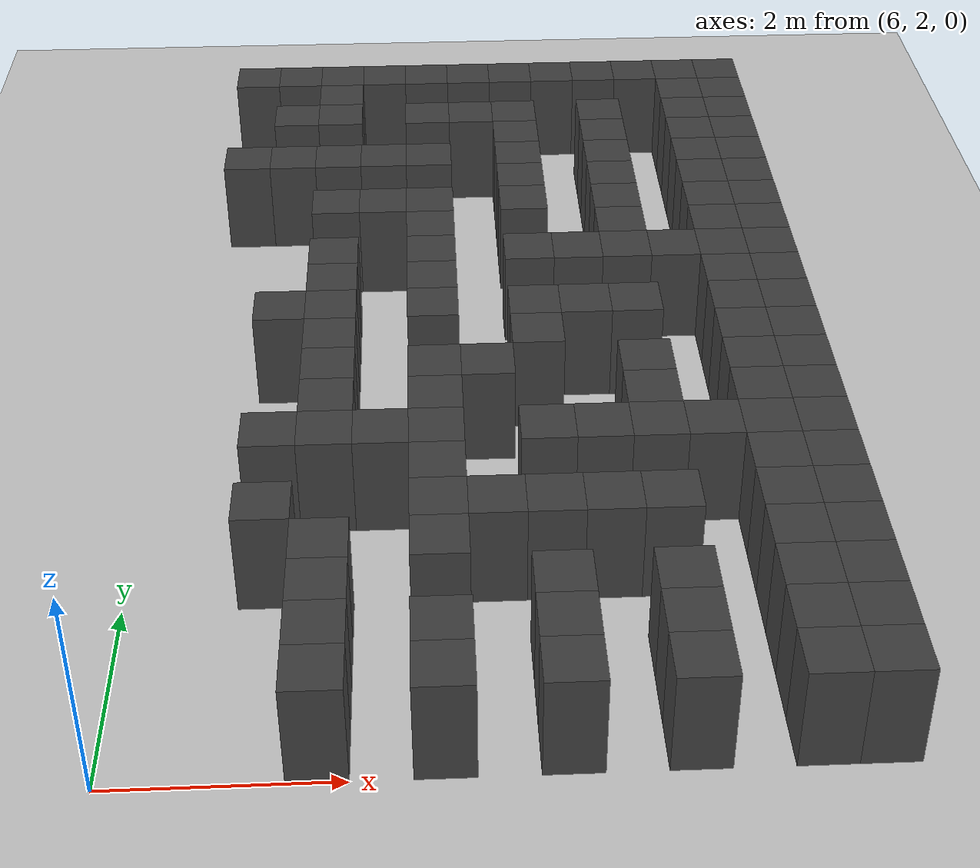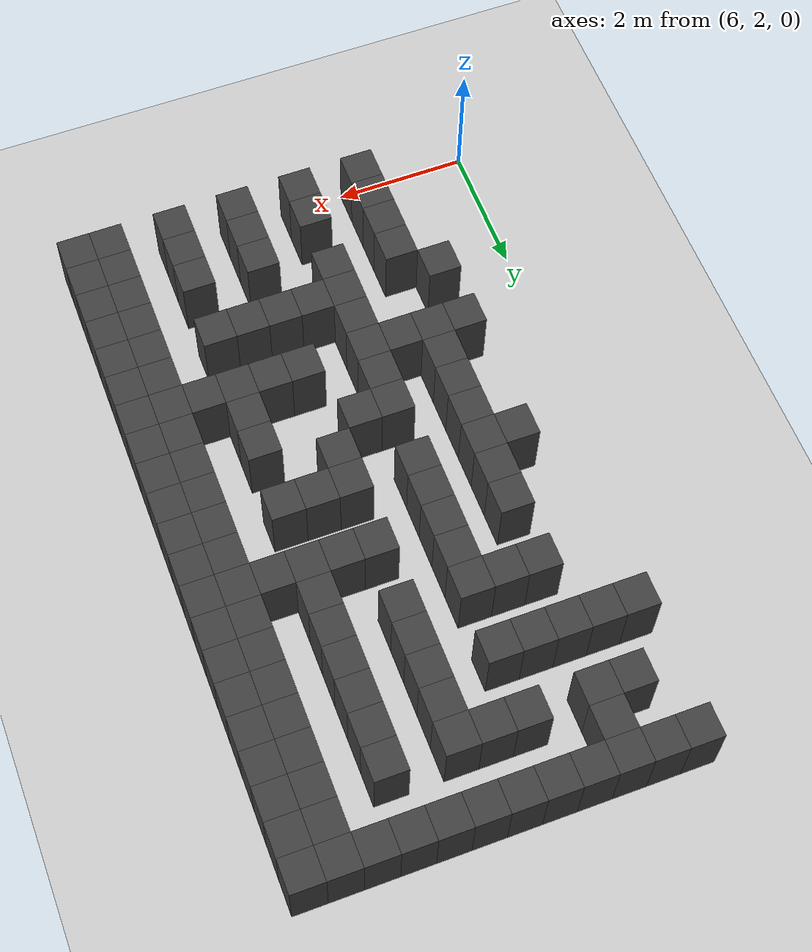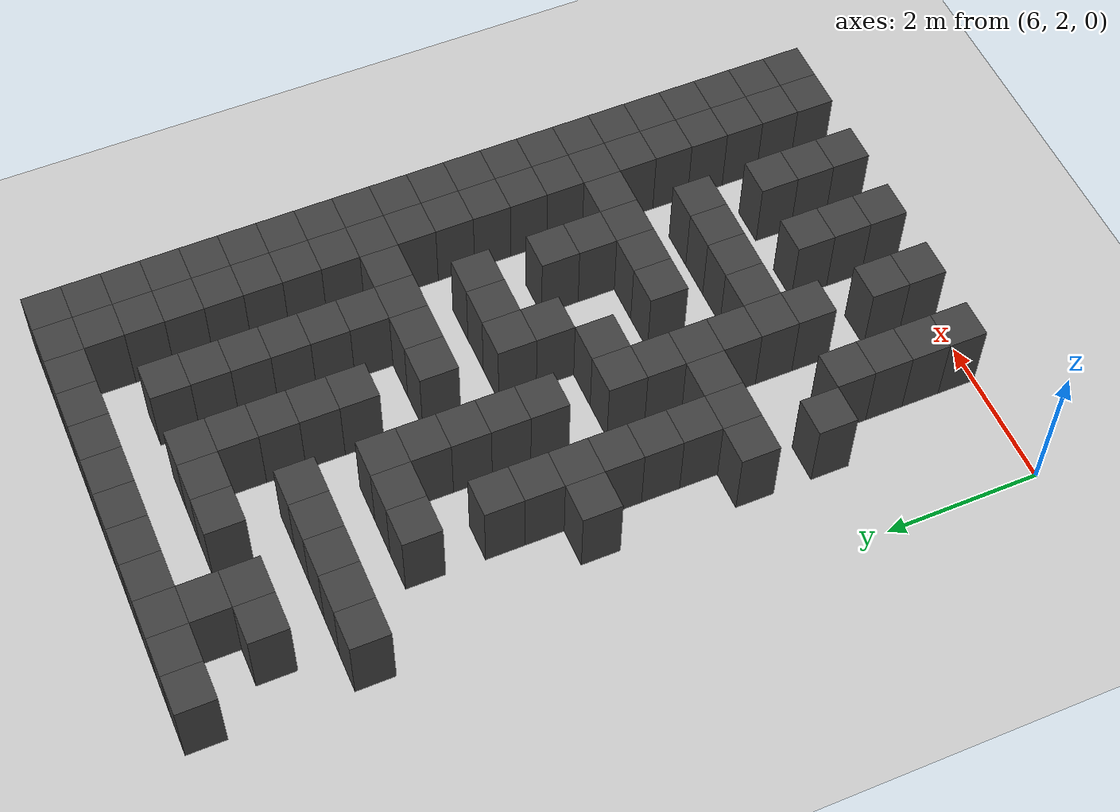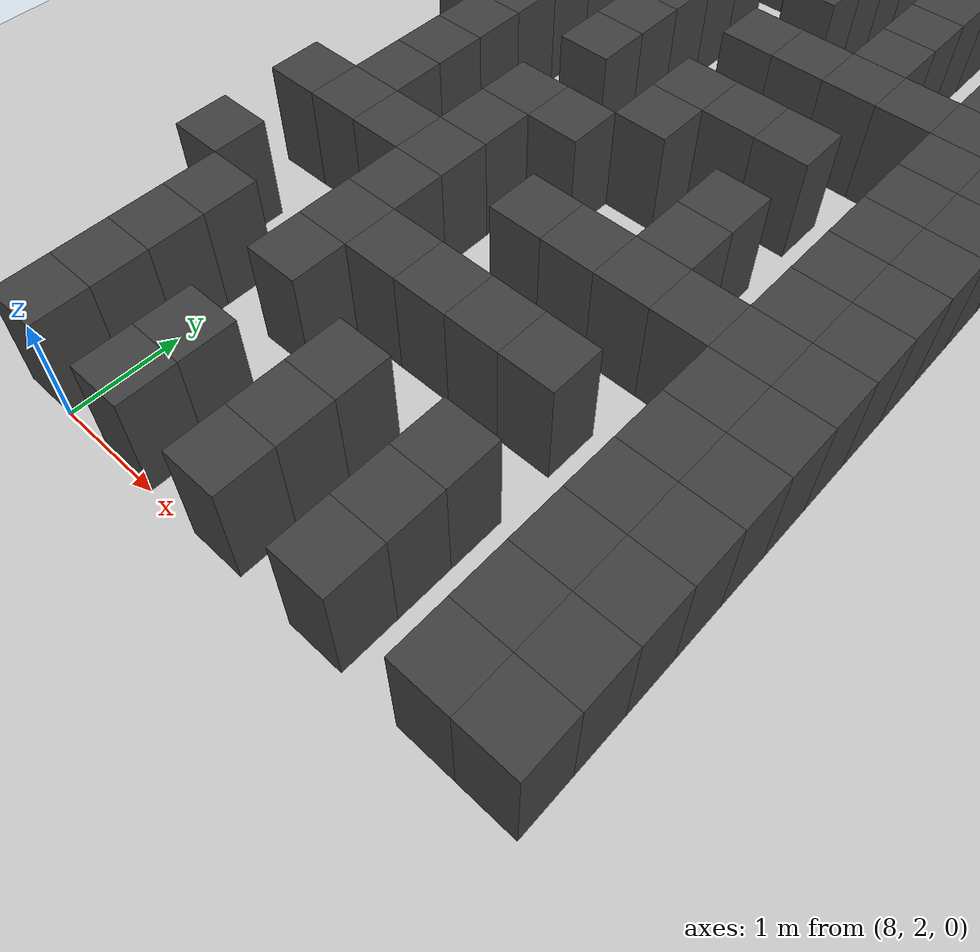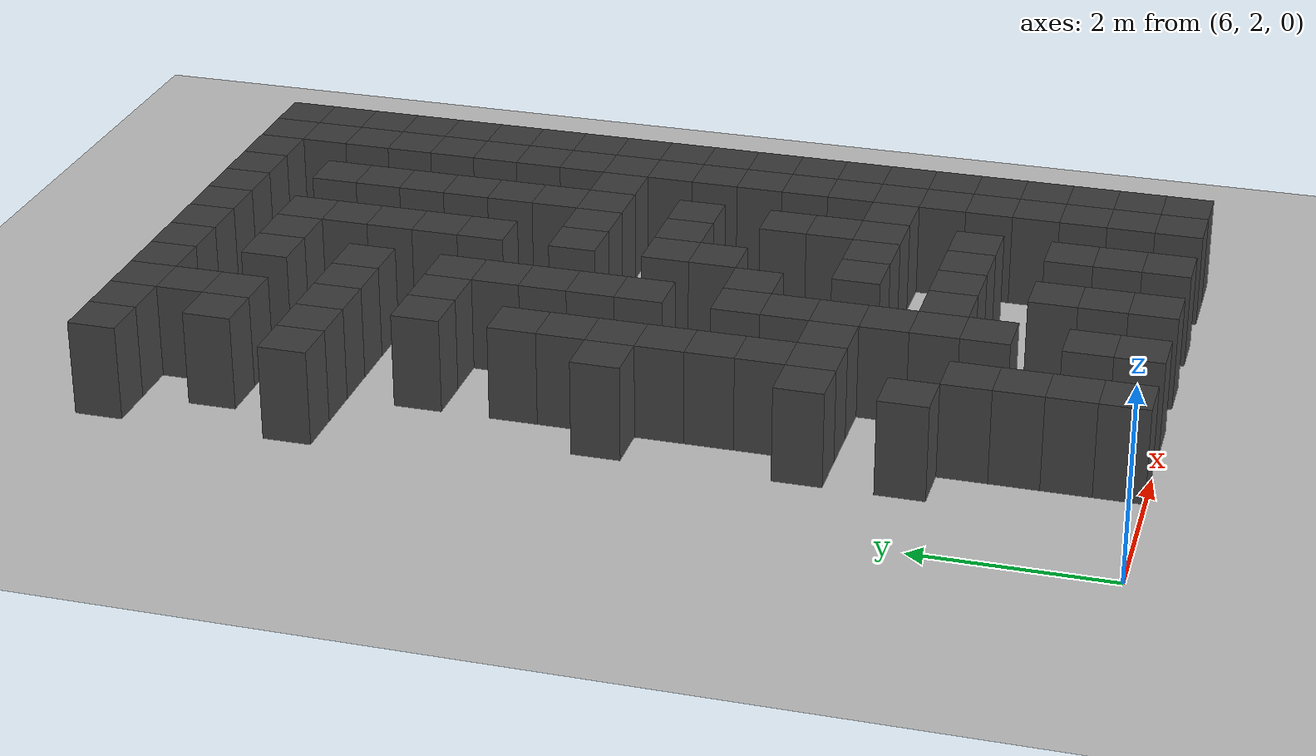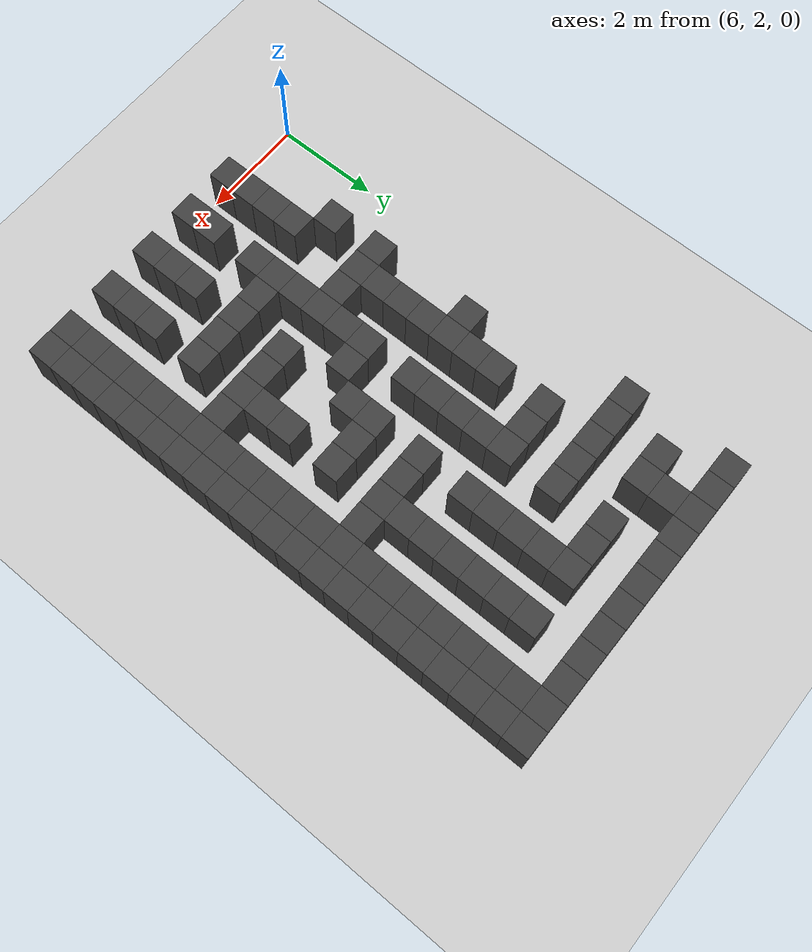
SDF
<sdf version="1.7">
 <world name="map_17663">
  <model name="ground_plane">
   <static>true</static>
   <link name="link">
    <collision name="collision">
     <geometry><plane><normal>0 0 1</normal><size>200 200</size></plane></geometry>
    </collision>
    <visual name="visual">
     <geometry><plane><normal>0 0 1</normal><size>200 200</size></plane></geometry>
     <material><ambient>0.8 0.8 0.8 1</ambient><diffuse>0.8 0.8 0.8 1</diffuse></material>
    </visual>
   </link>
  </model>
  <model name="maze_environment">
   <static>true</static>
   <link name="wall_38">
    <pose>6.750 12.250 0.500 0 0 0</pose>
    <collision name="col"><geometry><box><size>0.5 0.5 1.0</size></box></geometry></collision>
    <visual name="vis">
     <geometry><box><size>0.5 0.5 1.0</size></box></geometry>
     <material><ambient>0.15 0.15 0.15 1</ambient><diffuse>0.25 0.25 0.25 1</diffuse></material>
    </visual>
   </link>
   <link name="wall_39">
    <pose>7.250 12.250 0.500 0 0 0</pose>
    <collision name="col"><geometry><box><size>0.5 0.5 1.0</size></box></geometry></collision>
    <visual name="vis">
     <geometry><box><size>0.5 0.5 1.0</size></box></geometry>
     <material><ambient>0.15 0.15 0.15 1</ambient><diffuse>0.25 0.25 0.25 1</diffuse></material>
    </visual>
   </link>
   <link name="wall_40">
    <pose>7.750 12.250 0.500 0 0 0</pose>
    <collision name="col"><geometry><box><size>0.5 0.5 1.0</size></box></geometry></collision>
    <visual name="vis">
     <geometry><box><size>0.5 0.5 1.0</size></box></geometry>
     <material><ambient>0.15 0.15 0.15 1</ambient><diffuse>0.25 0.25 0.25 1</diffuse></material>
    </visual>
   </link>
   <link name="wall_41">
    <pose>8.250 12.250 0.500 0 0 0</pose>
    <collision name="col"><geometry><box><size>0.5 0.5 1.0</size></box></geometry></collision>
    <visual name="vis">
     <geometry><box><size>0.5 0.5 1.0</size></box></geometry>
     <material><ambient>0.15 0.15 0.15 1</ambient><diffuse>0.25 0.25 0.25 1</diffuse></material>
    </visual>
   </link>
   <link name="wall_42">
    <pose>8.750 12.250 0.500 0 0 0</pose>
    <collision name="col"><geometry><box><size>0.5 0.5 1.0</size></box></geometry></collision>
    <visual name="vis">
     <geometry><box><size>0.5 0.5 1.0</size></box></geometry>
     <material><ambient>0.15 0.15 0.15 1</ambient><diffuse>0.25 0.25 0.25 1</diffuse></material>
    </visual>
   </link>
   <link name="wall_43">
    <pose>9.250 12.250 0.500 0 0 0</pose>
    <collision name="col"><geometry><box><size>0.5 0.5 1.0</size></box></geometry></collision>
    <visual name="vis">
     <geometry><box><size>0.5 0.5 1.0</size></box></geometry>
     <material><ambient>0.15 0.15 0.15 1</ambient><diffuse>0.25 0.25 0.25 1</diffuse></material>
    </visual>
   </link>
   <link name="wall_44">
    <pose>9.750 12.250 0.500 0 0 0</pose>
    <collision name="col"><geometry><box><size>0.5 0.5 1.0</size></box></geometry></collision>
    <visual name="vis">
     <geometry><box><size>0.5 0.5 1.0</size></box></geometry>
     <material><ambient>0.15 0.15 0.15 1</ambient><diffuse>0.25 0.25 0.25 1</diffuse></material>
    </visual>
   </link>
   <link name="wall_45">
    <pose>10.250 12.250 0.500 0 0 0</pose>
    <collision name="col"><geometry><box><size>0.5 0.5 1.0</size></box></geometry></collision>
    <visual name="vis">
     <geometry><box><size>0.5 0.5 1.0</size></box></geometry>
     <material><ambient>0.15 0.15 0.15 1</ambient><diffuse>0.25 0.25 0.25 1</diffuse></material>
    </visual>
   </link>
   <link name="wall_46">
    <pose>10.750 12.250 0.500 0 0 0</pose>
    <collision name="col"><geometry><box><size>0.5 0.5 1.0</size></box></geometry></collision>
    <visual name="vis">
     <geometry><box><size>0.5 0.5 1.0</size></box></geometry>
     <material><ambient>0.15 0.15 0.15 1</ambient><diffuse>0.25 0.25 0.25 1</diffuse></material>
    </visual>
   </link>
   <link name="wall_47">
    <pose>11.250 12.250 0.500 0 0 0</pose>
    <collision name="col"><geometry><box><size>0.5 0.5 1.0</size></box></geometry></collision>
    <visual name="vis">
     <geometry><box><size>0.5 0.5 1.0</size></box></geometry>
     <material><ambient>0.15 0.15 0.15 1</ambient><diffuse>0.25 0.25 0.25 1</diffuse></material>
    </visual>
   </link>
   <link name="wall_48">
    <pose>11.750 12.250 0.500 0 0 0</pose>
    <collision name="col"><geometry><box><size>0.5 0.5 1.0</size></box></geometry></collision>
    <visual name="vis">
     <geometry><box><size>0.5 0.5 1.0</size></box></geometry>
     <material><ambient>0.15 0.15 0.15 1</ambient><diffuse>0.25 0.25 0.25 1</diffuse></material>
    </visual>
   </link>
   <link name="wall_49">
    <pose>12.250 12.250 0.500 0 0 0</pose>
    <collision name="col"><geometry><box><size>0.5 0.5 1.0</size></box></geometry></collision>
    <visual name="vis">
     <geometry><box><size>0.5 0.5 1.0</size></box></geometry>
     <material><ambient>0.15 0.15 0.15 1</ambient><diffuse>0.25 0.25 0.25 1</diffuse></material>
    </visual>
   </link>
   <link name="wall_56">
    <pose>7.750 11.750 0.500 0 0 0</pose>
    <collision name="col"><geometry><box><size>0.5 0.5 1.0</size></box></geometry></collision>
    <visual name="vis">
     <geometry><box><size>0.5 0.5 1.0</size></box></geometry>
     <material><ambient>0.15 0.15 0.15 1</ambient><diffuse>0.25 0.25 0.25 1</diffuse></material>
    </visual>
   </link>
   <link name="wall_57">
    <pose>11.750 11.750 0.500 0 0 0</pose>
    <collision name="col"><geometry><box><size>0.5 0.5 1.0</size></box></geometry></collision>
    <visual name="vis">
     <geometry><box><size>0.5 0.5 1.0</size></box></geometry>
     <material><ambient>0.15 0.15 0.15 1</ambient><diffuse>0.25 0.25 0.25 1</diffuse></material>
    </visual>
   </link>
   <link name="wall_58">
    <pose>12.250 11.750 0.500 0 0 0</pose>
    <collision name="col"><geometry><box><size>0.5 0.5 1.0</size></box></geometry></collision>
    <visual name="vis">
     <geometry><box><size>0.5 0.5 1.0</size></box></geometry>
     <material><ambient>0.15 0.15 0.15 1</ambient><diffuse>0.25 0.25 0.25 1</diffuse></material>
    </visual>
   </link>
   <link name="wall_83">
    <pose>7.250 11.250 0.500 0 0 0</pose>
    <collision name="col"><geometry><box><size>0.5 0.5 1.0</size></box></geometry></collision>
    <visual name="vis">
     <geometry><box><size>0.5 0.5 1.0</size></box></geometry>
     <material><ambient>0.15 0.15 0.15 1</ambient><diffuse>0.25 0.25 0.25 1</diffuse></material>
    </visual>
   </link>
   <link name="wall_84">
    <pose>7.750 11.250 0.500 0 0 0</pose>
    <collision name="col"><geometry><box><size>0.5 0.5 1.0</size></box></geometry></collision>
    <visual name="vis">
     <geometry><box><size>0.5 0.5 1.0</size></box></geometry>
     <material><ambient>0.15 0.15 0.15 1</ambient><diffuse>0.25 0.25 0.25 1</diffuse></material>
    </visual>
   </link>
   <link name="wall_85">
    <pose>8.750 11.250 0.500 0 0 0</pose>
    <collision name="col"><geometry><box><size>0.5 0.5 1.0</size></box></geometry></collision>
    <visual name="vis">
     <geometry><box><size>0.5 0.5 1.0</size></box></geometry>
     <material><ambient>0.15 0.15 0.15 1</ambient><diffuse>0.25 0.25 0.25 1</diffuse></material>
    </visual>
   </link>
   <link name="wall_86">
    <pose>9.250 11.250 0.500 0 0 0</pose>
    <collision name="col"><geometry><box><size>0.5 0.5 1.0</size></box></geometry></collision>
    <visual name="vis">
     <geometry><box><size>0.5 0.5 1.0</size></box></geometry>
     <material><ambient>0.15 0.15 0.15 1</ambient><diffuse>0.25 0.25 0.25 1</diffuse></material>
    </visual>
   </link>
   <link name="wall_87">
    <pose>9.750 11.250 0.500 0 0 0</pose>
    <collision name="col"><geometry><box><size>0.5 0.5 1.0</size></box></geometry></collision>
    <visual name="vis">
     <geometry><box><size>0.5 0.5 1.0</size></box></geometry>
     <material><ambient>0.15 0.15 0.15 1</ambient><diffuse>0.25 0.25 0.25 1</diffuse></material>
    </visual>
   </link>
   <link name="wall_88">
    <pose>10.750 11.250 0.500 0 0 0</pose>
    <collision name="col"><geometry><box><size>0.5 0.5 1.0</size></box></geometry></collision>
    <visual name="vis">
     <geometry><box><size>0.5 0.5 1.0</size></box></geometry>
     <material><ambient>0.15 0.15 0.15 1</ambient><diffuse>0.25 0.25 0.25 1</diffuse></material>
    </visual>
   </link>
   <link name="wall_89">
    <pose>11.750 11.250 0.500 0 0 0</pose>
    <collision name="col"><geometry><box><size>0.5 0.5 1.0</size></box></geometry></collision>
    <visual name="vis">
     <geometry><box><size>0.5 0.5 1.0</size></box></geometry>
     <material><ambient>0.15 0.15 0.15 1</ambient><diffuse>0.25 0.25 0.25 1</diffuse></material>
    </visual>
   </link>
   <link name="wall_90">
    <pose>12.250 11.250 0.500 0 0 0</pose>
    <collision name="col"><geometry><box><size>0.5 0.5 1.0</size></box></geometry></collision>
    <visual name="vis">
     <geometry><box><size>0.5 0.5 1.0</size></box></geometry>
     <material><ambient>0.15 0.15 0.15 1</ambient><diffuse>0.25 0.25 0.25 1</diffuse></material>
    </visual>
   </link>
   <link name="wall_101">
    <pose>9.750 10.750 0.500 0 0 0</pose>
    <collision name="col"><geometry><box><size>0.5 0.5 1.0</size></box></geometry></collision>
    <visual name="vis">
     <geometry><box><size>0.5 0.5 1.0</size></box></geometry>
     <material><ambient>0.15 0.15 0.15 1</ambient><diffuse>0.25 0.25 0.25 1</diffuse></material>
    </visual>
   </link>
   <link name="wall_102">
    <pose>10.750 10.750 0.500 0 0 0</pose>
    <collision name="col"><geometry><box><size>0.5 0.5 1.0</size></box></geometry></collision>
    <visual name="vis">
     <geometry><box><size>0.5 0.5 1.0</size></box></geometry>
     <material><ambient>0.15 0.15 0.15 1</ambient><diffuse>0.25 0.25 0.25 1</diffuse></material>
    </visual>
   </link>
   <link name="wall_103">
    <pose>11.750 10.750 0.500 0 0 0</pose>
    <collision name="col"><geometry><box><size>0.5 0.5 1.0</size></box></geometry></collision>
    <visual name="vis">
     <geometry><box><size>0.5 0.5 1.0</size></box></geometry>
     <material><ambient>0.15 0.15 0.15 1</ambient><diffuse>0.25 0.25 0.25 1</diffuse></material>
    </visual>
   </link>
   <link name="wall_104">
    <pose>12.250 10.750 0.500 0 0 0</pose>
    <collision name="col"><geometry><box><size>0.5 0.5 1.0</size></box></geometry></collision>
    <visual name="vis">
     <geometry><box><size>0.5 0.5 1.0</size></box></geometry>
     <material><ambient>0.15 0.15 0.15 1</ambient><diffuse>0.25 0.25 0.25 1</diffuse></material>
    </visual>
   </link>
   <link name="wall_130">
    <pose>6.750 10.250 0.500 0 0 0</pose>
    <collision name="col"><geometry><box><size>0.5 0.5 1.0</size></box></geometry></collision>
    <visual name="vis">
     <geometry><box><size>0.5 0.5 1.0</size></box></geometry>
     <material><ambient>0.15 0.15 0.15 1</ambient><diffuse>0.25 0.25 0.25 1</diffuse></material>
    </visual>
   </link>
   <link name="wall_131">
    <pose>7.250 10.250 0.500 0 0 0</pose>
    <collision name="col"><geometry><box><size>0.5 0.5 1.0</size></box></geometry></collision>
    <visual name="vis">
     <geometry><box><size>0.5 0.5 1.0</size></box></geometry>
     <material><ambient>0.15 0.15 0.15 1</ambient><diffuse>0.25 0.25 0.25 1</diffuse></material>
    </visual>
   </link>
   <link name="wall_132">
    <pose>7.750 10.250 0.500 0 0 0</pose>
    <collision name="col"><geometry><box><size>0.5 0.5 1.0</size></box></geometry></collision>
    <visual name="vis">
     <geometry><box><size>0.5 0.5 1.0</size></box></geometry>
     <material><ambient>0.15 0.15 0.15 1</ambient><diffuse>0.25 0.25 0.25 1</diffuse></material>
    </visual>
   </link>
   <link name="wall_133">
    <pose>8.250 10.250 0.500 0 0 0</pose>
    <collision name="col"><geometry><box><size>0.5 0.5 1.0</size></box></geometry></collision>
    <visual name="vis">
     <geometry><box><size>0.5 0.5 1.0</size></box></geometry>
     <material><ambient>0.15 0.15 0.15 1</ambient><diffuse>0.25 0.25 0.25 1</diffuse></material>
    </visual>
   </link>
   <link name="wall_134">
    <pose>8.750 10.250 0.500 0 0 0</pose>
    <collision name="col"><geometry><box><size>0.5 0.5 1.0</size></box></geometry></collision>
    <visual name="vis">
     <geometry><box><size>0.5 0.5 1.0</size></box></geometry>
     <material><ambient>0.15 0.15 0.15 1</ambient><diffuse>0.25 0.25 0.25 1</diffuse></material>
    </visual>
   </link>
   <link name="wall_135">
    <pose>9.750 10.250 0.500 0 0 0</pose>
    <collision name="col"><geometry><box><size>0.5 0.5 1.0</size></box></geometry></collision>
    <visual name="vis">
     <geometry><box><size>0.5 0.5 1.0</size></box></geometry>
     <material><ambient>0.15 0.15 0.15 1</ambient><diffuse>0.25 0.25 0.25 1</diffuse></material>
    </visual>
   </link>
   <link name="wall_136">
    <pose>10.750 10.250 0.500 0 0 0</pose>
    <collision name="col"><geometry><box><size>0.5 0.5 1.0</size></box></geometry></collision>
    <visual name="vis">
     <geometry><box><size>0.5 0.5 1.0</size></box></geometry>
     <material><ambient>0.15 0.15 0.15 1</ambient><diffuse>0.25 0.25 0.25 1</diffuse></material>
    </visual>
   </link>
   <link name="wall_137">
    <pose>11.750 10.250 0.500 0 0 0</pose>
    <collision name="col"><geometry><box><size>0.5 0.5 1.0</size></box></geometry></collision>
    <visual name="vis">
     <geometry><box><size>0.5 0.5 1.0</size></box></geometry>
     <material><ambient>0.15 0.15 0.15 1</ambient><diffuse>0.25 0.25 0.25 1</diffuse></material>
    </visual>
   </link>
   <link name="wall_138">
    <pose>12.250 10.250 0.500 0 0 0</pose>
    <collision name="col"><geometry><box><size>0.5 0.5 1.0</size></box></geometry></collision>
    <visual name="vis">
     <geometry><box><size>0.5 0.5 1.0</size></box></geometry>
     <material><ambient>0.15 0.15 0.15 1</ambient><diffuse>0.25 0.25 0.25 1</diffuse></material>
    </visual>
   </link>
   <link name="wall_151">
    <pose>9.750 9.750 0.500 0 0 0</pose>
    <collision name="col"><geometry><box><size>0.5 0.5 1.0</size></box></geometry></collision>
    <visual name="vis">
     <geometry><box><size>0.5 0.5 1.0</size></box></geometry>
     <material><ambient>0.15 0.15 0.15 1</ambient><diffuse>0.25 0.25 0.25 1</diffuse></material>
    </visual>
   </link>
   <link name="wall_152">
    <pose>10.750 9.750 0.500 0 0 0</pose>
    <collision name="col"><geometry><box><size>0.5 0.5 1.0</size></box></geometry></collision>
    <visual name="vis">
     <geometry><box><size>0.5 0.5 1.0</size></box></geometry>
     <material><ambient>0.15 0.15 0.15 1</ambient><diffuse>0.25 0.25 0.25 1</diffuse></material>
    </visual>
   </link>
   <link name="wall_153">
    <pose>11.750 9.750 0.500 0 0 0</pose>
    <collision name="col"><geometry><box><size>0.5 0.5 1.0</size></box></geometry></collision>
    <visual name="vis">
     <geometry><box><size>0.5 0.5 1.0</size></box></geometry>
     <material><ambient>0.15 0.15 0.15 1</ambient><diffuse>0.25 0.25 0.25 1</diffuse></material>
    </visual>
   </link>
   <link name="wall_154">
    <pose>12.250 9.750 0.500 0 0 0</pose>
    <collision name="col"><geometry><box><size>0.5 0.5 1.0</size></box></geometry></collision>
    <visual name="vis">
     <geometry><box><size>0.5 0.5 1.0</size></box></geometry>
     <material><ambient>0.15 0.15 0.15 1</ambient><diffuse>0.25 0.25 0.25 1</diffuse></material>
    </visual>
   </link>
   <link name="wall_181">
    <pose>7.750 9.250 0.500 0 0 0</pose>
    <collision name="col"><geometry><box><size>0.5 0.5 1.0</size></box></geometry></collision>
    <visual name="vis">
     <geometry><box><size>0.5 0.5 1.0</size></box></geometry>
     <material><ambient>0.15 0.15 0.15 1</ambient><diffuse>0.25 0.25 0.25 1</diffuse></material>
    </visual>
   </link>
   <link name="wall_182">
    <pose>8.250 9.250 0.500 0 0 0</pose>
    <collision name="col"><geometry><box><size>0.5 0.5 1.0</size></box></geometry></collision>
    <visual name="vis">
     <geometry><box><size>0.5 0.5 1.0</size></box></geometry>
     <material><ambient>0.15 0.15 0.15 1</ambient><diffuse>0.25 0.25 0.25 1</diffuse></material>
    </visual>
   </link>
   <link name="wall_183">
    <pose>8.750 9.250 0.500 0 0 0</pose>
    <collision name="col"><geometry><box><size>0.5 0.5 1.0</size></box></geometry></collision>
    <visual name="vis">
     <geometry><box><size>0.5 0.5 1.0</size></box></geometry>
     <material><ambient>0.15 0.15 0.15 1</ambient><diffuse>0.25 0.25 0.25 1</diffuse></material>
    </visual>
   </link>
   <link name="wall_184">
    <pose>9.750 9.250 0.500 0 0 0</pose>
    <collision name="col"><geometry><box><size>0.5 0.5 1.0</size></box></geometry></collision>
    <visual name="vis">
     <geometry><box><size>0.5 0.5 1.0</size></box></geometry>
     <material><ambient>0.15 0.15 0.15 1</ambient><diffuse>0.25 0.25 0.25 1</diffuse></material>
    </visual>
   </link>
   <link name="wall_185">
    <pose>10.750 9.250 0.500 0 0 0</pose>
    <collision name="col"><geometry><box><size>0.5 0.5 1.0</size></box></geometry></collision>
    <visual name="vis">
     <geometry><box><size>0.5 0.5 1.0</size></box></geometry>
     <material><ambient>0.15 0.15 0.15 1</ambient><diffuse>0.25 0.25 0.25 1</diffuse></material>
    </visual>
   </link>
   <link name="wall_186">
    <pose>11.750 9.250 0.500 0 0 0</pose>
    <collision name="col"><geometry><box><size>0.5 0.5 1.0</size></box></geometry></collision>
    <visual name="vis">
     <geometry><box><size>0.5 0.5 1.0</size></box></geometry>
     <material><ambient>0.15 0.15 0.15 1</ambient><diffuse>0.25 0.25 0.25 1</diffuse></material>
    </visual>
   </link>
   <link name="wall_187">
    <pose>12.250 9.250 0.500 0 0 0</pose>
    <collision name="col"><geometry><box><size>0.5 0.5 1.0</size></box></geometry></collision>
    <visual name="vis">
     <geometry><box><size>0.5 0.5 1.0</size></box></geometry>
     <material><ambient>0.15 0.15 0.15 1</ambient><diffuse>0.25 0.25 0.25 1</diffuse></material>
    </visual>
   </link>
   <link name="wall_199">
    <pose>8.750 8.750 0.500 0 0 0</pose>
    <collision name="col"><geometry><box><size>0.5 0.5 1.0</size></box></geometry></collision>
    <visual name="vis">
     <geometry><box><size>0.5 0.5 1.0</size></box></geometry>
     <material><ambient>0.15 0.15 0.15 1</ambient><diffuse>0.25 0.25 0.25 1</diffuse></material>
    </visual>
   </link>
   <link name="wall_200">
    <pose>10.750 8.750 0.500 0 0 0</pose>
    <collision name="col"><geometry><box><size>0.5 0.5 1.0</size></box></geometry></collision>
    <visual name="vis">
     <geometry><box><size>0.5 0.5 1.0</size></box></geometry>
     <material><ambient>0.15 0.15 0.15 1</ambient><diffuse>0.25 0.25 0.25 1</diffuse></material>
    </visual>
   </link>
   <link name="wall_201">
    <pose>11.750 8.750 0.500 0 0 0</pose>
    <collision name="col"><geometry><box><size>0.5 0.5 1.0</size></box></geometry></collision>
    <visual name="vis">
     <geometry><box><size>0.5 0.5 1.0</size></box></geometry>
     <material><ambient>0.15 0.15 0.15 1</ambient><diffuse>0.25 0.25 0.25 1</diffuse></material>
    </visual>
   </link>
   <link name="wall_202">
    <pose>12.250 8.750 0.500 0 0 0</pose>
    <collision name="col"><geometry><box><size>0.5 0.5 1.0</size></box></geometry></collision>
    <visual name="vis">
     <geometry><box><size>0.5 0.5 1.0</size></box></geometry>
     <material><ambient>0.15 0.15 0.15 1</ambient><diffuse>0.25 0.25 0.25 1</diffuse></material>
    </visual>
   </link>
   <link name="wall_233">
    <pose>7.750 8.250 0.500 0 0 0</pose>
    <collision name="col"><geometry><box><size>0.5 0.5 1.0</size></box></geometry></collision>
    <visual name="vis">
     <geometry><box><size>0.5 0.5 1.0</size></box></geometry>
     <material><ambient>0.15 0.15 0.15 1</ambient><diffuse>0.25 0.25 0.25 1</diffuse></material>
    </visual>
   </link>
   <link name="wall_234">
    <pose>8.750 8.250 0.500 0 0 0</pose>
    <collision name="col"><geometry><box><size>0.5 0.5 1.0</size></box></geometry></collision>
    <visual name="vis">
     <geometry><box><size>0.5 0.5 1.0</size></box></geometry>
     <material><ambient>0.15 0.15 0.15 1</ambient><diffuse>0.25 0.25 0.25 1</diffuse></material>
    </visual>
   </link>
   <link name="wall_235">
    <pose>9.750 8.250 0.500 0 0 0</pose>
    <collision name="col"><geometry><box><size>0.5 0.5 1.0</size></box></geometry></collision>
    <visual name="vis">
     <geometry><box><size>0.5 0.5 1.0</size></box></geometry>
     <material><ambient>0.15 0.15 0.15 1</ambient><diffuse>0.25 0.25 0.25 1</diffuse></material>
    </visual>
   </link>
   <link name="wall_236">
    <pose>10.250 8.250 0.500 0 0 0</pose>
    <collision name="col"><geometry><box><size>0.5 0.5 1.0</size></box></geometry></collision>
    <visual name="vis">
     <geometry><box><size>0.5 0.5 1.0</size></box></geometry>
     <material><ambient>0.15 0.15 0.15 1</ambient><diffuse>0.25 0.25 0.25 1</diffuse></material>
    </visual>
   </link>
   <link name="wall_237">
    <pose>10.750 8.250 0.500 0 0 0</pose>
    <collision name="col"><geometry><box><size>0.5 0.5 1.0</size></box></geometry></collision>
    <visual name="vis">
     <geometry><box><size>0.5 0.5 1.0</size></box></geometry>
     <material><ambient>0.15 0.15 0.15 1</ambient><diffuse>0.25 0.25 0.25 1</diffuse></material>
    </visual>
   </link>
   <link name="wall_238">
    <pose>11.250 8.250 0.500 0 0 0</pose>
    <collision name="col"><geometry><box><size>0.5 0.5 1.0</size></box></geometry></collision>
    <visual name="vis">
     <geometry><box><size>0.5 0.5 1.0</size></box></geometry>
     <material><ambient>0.15 0.15 0.15 1</ambient><diffuse>0.25 0.25 0.25 1</diffuse></material>
    </visual>
   </link>
   <link name="wall_239">
    <pose>11.750 8.250 0.500 0 0 0</pose>
    <collision name="col"><geometry><box><size>0.5 0.5 1.0</size></box></geometry></collision>
    <visual name="vis">
     <geometry><box><size>0.5 0.5 1.0</size></box></geometry>
     <material><ambient>0.15 0.15 0.15 1</ambient><diffuse>0.25 0.25 0.25 1</diffuse></material>
    </visual>
   </link>
   <link name="wall_240">
    <pose>12.250 8.250 0.500 0 0 0</pose>
    <collision name="col"><geometry><box><size>0.5 0.5 1.0</size></box></geometry></collision>
    <visual name="vis">
     <geometry><box><size>0.5 0.5 1.0</size></box></geometry>
     <material><ambient>0.15 0.15 0.15 1</ambient><diffuse>0.25 0.25 0.25 1</diffuse></material>
    </visual>
   </link>
   <link name="wall_250">
    <pose>7.750 7.750 0.500 0 0 0</pose>
    <collision name="col"><geometry><box><size>0.5 0.5 1.0</size></box></geometry></collision>
    <visual name="vis">
     <geometry><box><size>0.5 0.5 1.0</size></box></geometry>
     <material><ambient>0.15 0.15 0.15 1</ambient><diffuse>0.25 0.25 0.25 1</diffuse></material>
    </visual>
   </link>
   <link name="wall_251">
    <pose>8.750 7.750 0.500 0 0 0</pose>
    <collision name="col"><geometry><box><size>0.5 0.5 1.0</size></box></geometry></collision>
    <visual name="vis">
     <geometry><box><size>0.5 0.5 1.0</size></box></geometry>
     <material><ambient>0.15 0.15 0.15 1</ambient><diffuse>0.25 0.25 0.25 1</diffuse></material>
    </visual>
   </link>
   <link name="wall_252">
    <pose>11.750 7.750 0.500 0 0 0</pose>
    <collision name="col"><geometry><box><size>0.5 0.5 1.0</size></box></geometry></collision>
    <visual name="vis">
     <geometry><box><size>0.5 0.5 1.0</size></box></geometry>
     <material><ambient>0.15 0.15 0.15 1</ambient><diffuse>0.25 0.25 0.25 1</diffuse></material>
    </visual>
   </link>
   <link name="wall_253">
    <pose>12.250 7.750 0.500 0 0 0</pose>
    <collision name="col"><geometry><box><size>0.5 0.5 1.0</size></box></geometry></collision>
    <visual name="vis">
     <geometry><box><size>0.5 0.5 1.0</size></box></geometry>
     <material><ambient>0.15 0.15 0.15 1</ambient><diffuse>0.25 0.25 0.25 1</diffuse></material>
    </visual>
   </link>
   <link name="wall_280">
    <pose>7.250 7.250 0.500 0 0 0</pose>
    <collision name="col"><geometry><box><size>0.5 0.5 1.0</size></box></geometry></collision>
    <visual name="vis">
     <geometry><box><size>0.5 0.5 1.0</size></box></geometry>
     <material><ambient>0.15 0.15 0.15 1</ambient><diffuse>0.25 0.25 0.25 1</diffuse></material>
    </visual>
   </link>
   <link name="wall_281">
    <pose>7.750 7.250 0.500 0 0 0</pose>
    <collision name="col"><geometry><box><size>0.5 0.5 1.0</size></box></geometry></collision>
    <visual name="vis">
     <geometry><box><size>0.5 0.5 1.0</size></box></geometry>
     <material><ambient>0.15 0.15 0.15 1</ambient><diffuse>0.25 0.25 0.25 1</diffuse></material>
    </visual>
   </link>
   <link name="wall_282">
    <pose>8.750 7.250 0.500 0 0 0</pose>
    <collision name="col"><geometry><box><size>0.5 0.5 1.0</size></box></geometry></collision>
    <visual name="vis">
     <geometry><box><size>0.5 0.5 1.0</size></box></geometry>
     <material><ambient>0.15 0.15 0.15 1</ambient><diffuse>0.25 0.25 0.25 1</diffuse></material>
    </visual>
   </link>
   <link name="wall_283">
    <pose>9.750 7.250 0.500 0 0 0</pose>
    <collision name="col"><geometry><box><size>0.5 0.5 1.0</size></box></geometry></collision>
    <visual name="vis">
     <geometry><box><size>0.5 0.5 1.0</size></box></geometry>
     <material><ambient>0.15 0.15 0.15 1</ambient><diffuse>0.25 0.25 0.25 1</diffuse></material>
    </visual>
   </link>
   <link name="wall_284">
    <pose>10.250 7.250 0.500 0 0 0</pose>
    <collision name="col"><geometry><box><size>0.5 0.5 1.0</size></box></geometry></collision>
    <visual name="vis">
     <geometry><box><size>0.5 0.5 1.0</size></box></geometry>
     <material><ambient>0.15 0.15 0.15 1</ambient><diffuse>0.25 0.25 0.25 1</diffuse></material>
    </visual>
   </link>
   <link name="wall_285">
    <pose>10.750 7.250 0.500 0 0 0</pose>
    <collision name="col"><geometry><box><size>0.5 0.5 1.0</size></box></geometry></collision>
    <visual name="vis">
     <geometry><box><size>0.5 0.5 1.0</size></box></geometry>
     <material><ambient>0.15 0.15 0.15 1</ambient><diffuse>0.25 0.25 0.25 1</diffuse></material>
    </visual>
   </link>
   <link name="wall_286">
    <pose>11.750 7.250 0.500 0 0 0</pose>
    <collision name="col"><geometry><box><size>0.5 0.5 1.0</size></box></geometry></collision>
    <visual name="vis">
     <geometry><box><size>0.5 0.5 1.0</size></box></geometry>
     <material><ambient>0.15 0.15 0.15 1</ambient><diffuse>0.25 0.25 0.25 1</diffuse></material>
    </visual>
   </link>
   <link name="wall_287">
    <pose>12.250 7.250 0.500 0 0 0</pose>
    <collision name="col"><geometry><box><size>0.5 0.5 1.0</size></box></geometry></collision>
    <visual name="vis">
     <geometry><box><size>0.5 0.5 1.0</size></box></geometry>
     <material><ambient>0.15 0.15 0.15 1</ambient><diffuse>0.25 0.25 0.25 1</diffuse></material>
    </visual>
   </link>
   <link name="wall_297">
    <pose>7.750 6.750 0.500 0 0 0</pose>
    <collision name="col"><geometry><box><size>0.5 0.5 1.0</size></box></geometry></collision>
    <visual name="vis">
     <geometry><box><size>0.5 0.5 1.0</size></box></geometry>
     <material><ambient>0.15 0.15 0.15 1</ambient><diffuse>0.25 0.25 0.25 1</diffuse></material>
    </visual>
   </link>
   <link name="wall_298">
    <pose>9.750 6.750 0.500 0 0 0</pose>
    <collision name="col"><geometry><box><size>0.5 0.5 1.0</size></box></geometry></collision>
    <visual name="vis">
     <geometry><box><size>0.5 0.5 1.0</size></box></geometry>
     <material><ambient>0.15 0.15 0.15 1</ambient><diffuse>0.25 0.25 0.25 1</diffuse></material>
    </visual>
   </link>
   <link name="wall_299">
    <pose>11.750 6.750 0.500 0 0 0</pose>
    <collision name="col"><geometry><box><size>0.5 0.5 1.0</size></box></geometry></collision>
    <visual name="vis">
     <geometry><box><size>0.5 0.5 1.0</size></box></geometry>
     <material><ambient>0.15 0.15 0.15 1</ambient><diffuse>0.25 0.25 0.25 1</diffuse></material>
    </visual>
   </link>
   <link name="wall_300">
    <pose>12.250 6.750 0.500 0 0 0</pose>
    <collision name="col"><geometry><box><size>0.5 0.5 1.0</size></box></geometry></collision>
    <visual name="vis">
     <geometry><box><size>0.5 0.5 1.0</size></box></geometry>
     <material><ambient>0.15 0.15 0.15 1</ambient><diffuse>0.25 0.25 0.25 1</diffuse></material>
    </visual>
   </link>
   <link name="wall_325">
    <pose>7.750 6.250 0.500 0 0 0</pose>
    <collision name="col"><geometry><box><size>0.5 0.5 1.0</size></box></geometry></collision>
    <visual name="vis">
     <geometry><box><size>0.5 0.5 1.0</size></box></geometry>
     <material><ambient>0.15 0.15 0.15 1</ambient><diffuse>0.25 0.25 0.25 1</diffuse></material>
    </visual>
   </link>
   <link name="wall_326">
    <pose>8.750 6.250 0.500 0 0 0</pose>
    <collision name="col"><geometry><box><size>0.5 0.5 1.0</size></box></geometry></collision>
    <visual name="vis">
     <geometry><box><size>0.5 0.5 1.0</size></box></geometry>
     <material><ambient>0.15 0.15 0.15 1</ambient><diffuse>0.25 0.25 0.25 1</diffuse></material>
    </visual>
   </link>
   <link name="wall_327">
    <pose>9.250 6.250 0.500 0 0 0</pose>
    <collision name="col"><geometry><box><size>0.5 0.5 1.0</size></box></geometry></collision>
    <visual name="vis">
     <geometry><box><size>0.5 0.5 1.0</size></box></geometry>
     <material><ambient>0.15 0.15 0.15 1</ambient><diffuse>0.25 0.25 0.25 1</diffuse></material>
    </visual>
   </link>
   <link name="wall_328">
    <pose>10.750 6.250 0.500 0 0 0</pose>
    <collision name="col"><geometry><box><size>0.5 0.5 1.0</size></box></geometry></collision>
    <visual name="vis">
     <geometry><box><size>0.5 0.5 1.0</size></box></geometry>
     <material><ambient>0.15 0.15 0.15 1</ambient><diffuse>0.25 0.25 0.25 1</diffuse></material>
    </visual>
   </link>
   <link name="wall_329">
    <pose>11.750 6.250 0.500 0 0 0</pose>
    <collision name="col"><geometry><box><size>0.5 0.5 1.0</size></box></geometry></collision>
    <visual name="vis">
     <geometry><box><size>0.5 0.5 1.0</size></box></geometry>
     <material><ambient>0.15 0.15 0.15 1</ambient><diffuse>0.25 0.25 0.25 1</diffuse></material>
    </visual>
   </link>
   <link name="wall_330">
    <pose>12.250 6.250 0.500 0 0 0</pose>
    <collision name="col"><geometry><box><size>0.5 0.5 1.0</size></box></geometry></collision>
    <visual name="vis">
     <geometry><box><size>0.5 0.5 1.0</size></box></geometry>
     <material><ambient>0.15 0.15 0.15 1</ambient><diffuse>0.25 0.25 0.25 1</diffuse></material>
    </visual>
   </link>
   <link name="wall_343">
    <pose>7.750 5.750 0.500 0 0 0</pose>
    <collision name="col"><geometry><box><size>0.5 0.5 1.0</size></box></geometry></collision>
    <visual name="vis">
     <geometry><box><size>0.5 0.5 1.0</size></box></geometry>
     <material><ambient>0.15 0.15 0.15 1</ambient><diffuse>0.25 0.25 0.25 1</diffuse></material>
    </visual>
   </link>
   <link name="wall_344">
    <pose>8.750 5.750 0.500 0 0 0</pose>
    <collision name="col"><geometry><box><size>0.5 0.5 1.0</size></box></geometry></collision>
    <visual name="vis">
     <geometry><box><size>0.5 0.5 1.0</size></box></geometry>
     <material><ambient>0.15 0.15 0.15 1</ambient><diffuse>0.25 0.25 0.25 1</diffuse></material>
    </visual>
   </link>
   <link name="wall_345">
    <pose>10.750 5.750 0.500 0 0 0</pose>
    <collision name="col"><geometry><box><size>0.5 0.5 1.0</size></box></geometry></collision>
    <visual name="vis">
     <geometry><box><size>0.5 0.5 1.0</size></box></geometry>
     <material><ambient>0.15 0.15 0.15 1</ambient><diffuse>0.25 0.25 0.25 1</diffuse></material>
    </visual>
   </link>
   <link name="wall_346">
    <pose>11.750 5.750 0.500 0 0 0</pose>
    <collision name="col"><geometry><box><size>0.5 0.5 1.0</size></box></geometry></collision>
    <visual name="vis">
     <geometry><box><size>0.5 0.5 1.0</size></box></geometry>
     <material><ambient>0.15 0.15 0.15 1</ambient><diffuse>0.25 0.25 0.25 1</diffuse></material>
    </visual>
   </link>
   <link name="wall_347">
    <pose>12.250 5.750 0.500 0 0 0</pose>
    <collision name="col"><geometry><box><size>0.5 0.5 1.0</size></box></geometry></collision>
    <visual name="vis">
     <geometry><box><size>0.5 0.5 1.0</size></box></geometry>
     <material><ambient>0.15 0.15 0.15 1</ambient><diffuse>0.25 0.25 0.25 1</diffuse></material>
    </visual>
   </link>
   <link name="wall_375">
    <pose>7.250 5.250 0.500 0 0 0</pose>
    <collision name="col"><geometry><box><size>0.5 0.5 1.0</size></box></geometry></collision>
    <visual name="vis">
     <geometry><box><size>0.5 0.5 1.0</size></box></geometry>
     <material><ambient>0.15 0.15 0.15 1</ambient><diffuse>0.25 0.25 0.25 1</diffuse></material>
    </visual>
   </link>
   <link name="wall_376">
    <pose>7.750 5.250 0.500 0 0 0</pose>
    <collision name="col"><geometry><box><size>0.5 0.5 1.0</size></box></geometry></collision>
    <visual name="vis">
     <geometry><box><size>0.5 0.5 1.0</size></box></geometry>
     <material><ambient>0.15 0.15 0.15 1</ambient><diffuse>0.25 0.25 0.25 1</diffuse></material>
    </visual>
   </link>
   <link name="wall_377">
    <pose>8.250 5.250 0.500 0 0 0</pose>
    <collision name="col"><geometry><box><size>0.5 0.5 1.0</size></box></geometry></collision>
    <visual name="vis">
     <geometry><box><size>0.5 0.5 1.0</size></box></geometry>
     <material><ambient>0.15 0.15 0.15 1</ambient><diffuse>0.25 0.25 0.25 1</diffuse></material>
    </visual>
   </link>
   <link name="wall_378">
    <pose>8.750 5.250 0.500 0 0 0</pose>
    <collision name="col"><geometry><box><size>0.5 0.5 1.0</size></box></geometry></collision>
    <visual name="vis">
     <geometry><box><size>0.5 0.5 1.0</size></box></geometry>
     <material><ambient>0.15 0.15 0.15 1</ambient><diffuse>0.25 0.25 0.25 1</diffuse></material>
    </visual>
   </link>
   <link name="wall_379">
    <pose>9.750 5.250 0.500 0 0 0</pose>
    <collision name="col"><geometry><box><size>0.5 0.5 1.0</size></box></geometry></collision>
    <visual name="vis">
     <geometry><box><size>0.5 0.5 1.0</size></box></geometry>
     <material><ambient>0.15 0.15 0.15 1</ambient><diffuse>0.25 0.25 0.25 1</diffuse></material>
    </visual>
   </link>
   <link name="wall_380">
    <pose>10.250 5.250 0.500 0 0 0</pose>
    <collision name="col"><geometry><box><size>0.5 0.5 1.0</size></box></geometry></collision>
    <visual name="vis">
     <geometry><box><size>0.5 0.5 1.0</size></box></geometry>
     <material><ambient>0.15 0.15 0.15 1</ambient><diffuse>0.25 0.25 0.25 1</diffuse></material>
    </visual>
   </link>
   <link name="wall_381">
    <pose>10.750 5.250 0.500 0 0 0</pose>
    <collision name="col"><geometry><box><size>0.5 0.5 1.0</size></box></geometry></collision>
    <visual name="vis">
     <geometry><box><size>0.5 0.5 1.0</size></box></geometry>
     <material><ambient>0.15 0.15 0.15 1</ambient><diffuse>0.25 0.25 0.25 1</diffuse></material>
    </visual>
   </link>
   <link name="wall_382">
    <pose>11.250 5.250 0.500 0 0 0</pose>
    <collision name="col"><geometry><box><size>0.5 0.5 1.0</size></box></geometry></collision>
    <visual name="vis">
     <geometry><box><size>0.5 0.5 1.0</size></box></geometry>
     <material><ambient>0.15 0.15 0.15 1</ambient><diffuse>0.25 0.25 0.25 1</diffuse></material>
    </visual>
   </link>
   <link name="wall_383">
    <pose>11.750 5.250 0.500 0 0 0</pose>
    <collision name="col"><geometry><box><size>0.5 0.5 1.0</size></box></geometry></collision>
    <visual name="vis">
     <geometry><box><size>0.5 0.5 1.0</size></box></geometry>
     <material><ambient>0.15 0.15 0.15 1</ambient><diffuse>0.25 0.25 0.25 1</diffuse></material>
    </visual>
   </link>
   <link name="wall_384">
    <pose>12.250 5.250 0.500 0 0 0</pose>
    <collision name="col"><geometry><box><size>0.5 0.5 1.0</size></box></geometry></collision>
    <visual name="vis">
     <geometry><box><size>0.5 0.5 1.0</size></box></geometry>
     <material><ambient>0.15 0.15 0.15 1</ambient><diffuse>0.25 0.25 0.25 1</diffuse></material>
    </visual>
   </link>
   <link name="wall_395">
    <pose>8.750 4.750 0.500 0 0 0</pose>
    <collision name="col"><geometry><box><size>0.5 0.5 1.0</size></box></geometry></collision>
    <visual name="vis">
     <geometry><box><size>0.5 0.5 1.0</size></box></geometry>
     <material><ambient>0.15 0.15 0.15 1</ambient><diffuse>0.25 0.25 0.25 1</diffuse></material>
    </visual>
   </link>
   <link name="wall_396">
    <pose>11.750 4.750 0.500 0 0 0</pose>
    <collision name="col"><geometry><box><size>0.5 0.5 1.0</size></box></geometry></collision>
    <visual name="vis">
     <geometry><box><size>0.5 0.5 1.0</size></box></geometry>
     <material><ambient>0.15 0.15 0.15 1</ambient><diffuse>0.25 0.25 0.25 1</diffuse></material>
    </visual>
   </link>
   <link name="wall_397">
    <pose>12.250 4.750 0.500 0 0 0</pose>
    <collision name="col"><geometry><box><size>0.5 0.5 1.0</size></box></geometry></collision>
    <visual name="vis">
     <geometry><box><size>0.5 0.5 1.0</size></box></geometry>
     <material><ambient>0.15 0.15 0.15 1</ambient><diffuse>0.25 0.25 0.25 1</diffuse></material>
    </visual>
   </link>
   <link name="wall_424">
    <pose>7.250 4.250 0.500 0 0 0</pose>
    <collision name="col"><geometry><box><size>0.5 0.5 1.0</size></box></geometry></collision>
    <visual name="vis">
     <geometry><box><size>0.5 0.5 1.0</size></box></geometry>
     <material><ambient>0.15 0.15 0.15 1</ambient><diffuse>0.25 0.25 0.25 1</diffuse></material>
    </visual>
   </link>
   <link name="wall_425">
    <pose>8.750 4.250 0.500 0 0 0</pose>
    <collision name="col"><geometry><box><size>0.5 0.5 1.0</size></box></geometry></collision>
    <visual name="vis">
     <geometry><box><size>0.5 0.5 1.0</size></box></geometry>
     <material><ambient>0.15 0.15 0.15 1</ambient><diffuse>0.25 0.25 0.25 1</diffuse></material>
    </visual>
   </link>
   <link name="wall_426">
    <pose>9.250 4.250 0.500 0 0 0</pose>
    <collision name="col"><geometry><box><size>0.5 0.5 1.0</size></box></geometry></collision>
    <visual name="vis">
     <geometry><box><size>0.5 0.5 1.0</size></box></geometry>
     <material><ambient>0.15 0.15 0.15 1</ambient><diffuse>0.25 0.25 0.25 1</diffuse></material>
    </visual>
   </link>
   <link name="wall_427">
    <pose>9.750 4.250 0.500 0 0 0</pose>
    <collision name="col"><geometry><box><size>0.5 0.5 1.0</size></box></geometry></collision>
    <visual name="vis">
     <geometry><box><size>0.5 0.5 1.0</size></box></geometry>
     <material><ambient>0.15 0.15 0.15 1</ambient><diffuse>0.25 0.25 0.25 1</diffuse></material>
    </visual>
   </link>
   <link name="wall_428">
    <pose>10.250 4.250 0.500 0 0 0</pose>
    <collision name="col"><geometry><box><size>0.5 0.5 1.0</size></box></geometry></collision>
    <visual name="vis">
     <geometry><box><size>0.5 0.5 1.0</size></box></geometry>
     <material><ambient>0.15 0.15 0.15 1</ambient><diffuse>0.25 0.25 0.25 1</diffuse></material>
    </visual>
   </link>
   <link name="wall_429">
    <pose>10.750 4.250 0.500 0 0 0</pose>
    <collision name="col"><geometry><box><size>0.5 0.5 1.0</size></box></geometry></collision>
    <visual name="vis">
     <geometry><box><size>0.5 0.5 1.0</size></box></geometry>
     <material><ambient>0.15 0.15 0.15 1</ambient><diffuse>0.25 0.25 0.25 1</diffuse></material>
    </visual>
   </link>
   <link name="wall_430">
    <pose>11.750 4.250 0.500 0 0 0</pose>
    <collision name="col"><geometry><box><size>0.5 0.5 1.0</size></box></geometry></collision>
    <visual name="vis">
     <geometry><box><size>0.5 0.5 1.0</size></box></geometry>
     <material><ambient>0.15 0.15 0.15 1</ambient><diffuse>0.25 0.25 0.25 1</diffuse></material>
    </visual>
   </link>
   <link name="wall_431">
    <pose>12.250 4.250 0.500 0 0 0</pose>
    <collision name="col"><geometry><box><size>0.5 0.5 1.0</size></box></geometry></collision>
    <visual name="vis">
     <geometry><box><size>0.5 0.5 1.0</size></box></geometry>
     <material><ambient>0.15 0.15 0.15 1</ambient><diffuse>0.25 0.25 0.25 1</diffuse></material>
    </visual>
   </link>
   <link name="wall_443">
    <pose>7.750 3.750 0.500 0 0 0</pose>
    <collision name="col"><geometry><box><size>0.5 0.5 1.0</size></box></geometry></collision>
    <visual name="vis">
     <geometry><box><size>0.5 0.5 1.0</size></box></geometry>
     <material><ambient>0.15 0.15 0.15 1</ambient><diffuse>0.25 0.25 0.25 1</diffuse></material>
    </visual>
   </link>
   <link name="wall_444">
    <pose>8.750 3.750 0.500 0 0 0</pose>
    <collision name="col"><geometry><box><size>0.5 0.5 1.0</size></box></geometry></collision>
    <visual name="vis">
     <geometry><box><size>0.5 0.5 1.0</size></box></geometry>
     <material><ambient>0.15 0.15 0.15 1</ambient><diffuse>0.25 0.25 0.25 1</diffuse></material>
    </visual>
   </link>
   <link name="wall_445">
    <pose>11.750 3.750 0.500 0 0 0</pose>
    <collision name="col"><geometry><box><size>0.5 0.5 1.0</size></box></geometry></collision>
    <visual name="vis">
     <geometry><box><size>0.5 0.5 1.0</size></box></geometry>
     <material><ambient>0.15 0.15 0.15 1</ambient><diffuse>0.25 0.25 0.25 1</diffuse></material>
    </visual>
   </link>
   <link name="wall_446">
    <pose>12.250 3.750 0.500 0 0 0</pose>
    <collision name="col"><geometry><box><size>0.5 0.5 1.0</size></box></geometry></collision>
    <visual name="vis">
     <geometry><box><size>0.5 0.5 1.0</size></box></geometry>
     <material><ambient>0.15 0.15 0.15 1</ambient><diffuse>0.25 0.25 0.25 1</diffuse></material>
    </visual>
   </link>
   <link name="wall_475">
    <pose>7.750 3.250 0.500 0 0 0</pose>
    <collision name="col"><geometry><box><size>0.5 0.5 1.0</size></box></geometry></collision>
    <visual name="vis">
     <geometry><box><size>0.5 0.5 1.0</size></box></geometry>
     <material><ambient>0.15 0.15 0.15 1</ambient><diffuse>0.25 0.25 0.25 1</diffuse></material>
    </visual>
   </link>
   <link name="wall_476">
    <pose>9.750 3.250 0.500 0 0 0</pose>
    <collision name="col"><geometry><box><size>0.5 0.5 1.0</size></box></geometry></collision>
    <visual name="vis">
     <geometry><box><size>0.5 0.5 1.0</size></box></geometry>
     <material><ambient>0.15 0.15 0.15 1</ambient><diffuse>0.25 0.25 0.25 1</diffuse></material>
    </visual>
   </link>
   <link name="wall_477">
    <pose>10.750 3.250 0.500 0 0 0</pose>
    <collision name="col"><geometry><box><size>0.5 0.5 1.0</size></box></geometry></collision>
    <visual name="vis">
     <geometry><box><size>0.5 0.5 1.0</size></box></geometry>
     <material><ambient>0.15 0.15 0.15 1</ambient><diffuse>0.25 0.25 0.25 1</diffuse></material>
    </visual>
   </link>
   <link name="wall_478">
    <pose>11.750 3.250 0.500 0 0 0</pose>
    <collision name="col"><geometry><box><size>0.5 0.5 1.0</size></box></geometry></collision>
    <visual name="vis">
     <geometry><box><size>0.5 0.5 1.0</size></box></geometry>
     <material><ambient>0.15 0.15 0.15 1</ambient><diffuse>0.25 0.25 0.25 1</diffuse></material>
    </visual>
   </link>
   <link name="wall_479">
    <pose>12.250 3.250 0.500 0 0 0</pose>
    <collision name="col"><geometry><box><size>0.5 0.5 1.0</size></box></geometry></collision>
    <visual name="vis">
     <geometry><box><size>0.5 0.5 1.0</size></box></geometry>
     <material><ambient>0.15 0.15 0.15 1</ambient><diffuse>0.25 0.25 0.25 1</diffuse></material>
    </visual>
   </link>
   <link name="wall_490">
    <pose>7.750 2.750 0.500 0 0 0</pose>
    <collision name="col"><geometry><box><size>0.5 0.5 1.0</size></box></geometry></collision>
    <visual name="vis">
     <geometry><box><size>0.5 0.5 1.0</size></box></geometry>
     <material><ambient>0.15 0.15 0.15 1</ambient><diffuse>0.25 0.25 0.25 1</diffuse></material>
    </visual>
   </link>
   <link name="wall_491">
    <pose>8.750 2.750 0.500 0 0 0</pose>
    <collision name="col"><geometry><box><size>0.5 0.5 1.0</size></box></geometry></collision>
    <visual name="vis">
     <geometry><box><size>0.5 0.5 1.0</size></box></geometry>
     <material><ambient>0.15 0.15 0.15 1</ambient><diffuse>0.25 0.25 0.25 1</diffuse></material>
    </visual>
   </link>
   <link name="wall_492">
    <pose>9.750 2.750 0.500 0 0 0</pose>
    <collision name="col"><geometry><box><size>0.5 0.5 1.0</size></box></geometry></collision>
    <visual name="vis">
     <geometry><box><size>0.5 0.5 1.0</size></box></geometry>
     <material><ambient>0.15 0.15 0.15 1</ambient><diffuse>0.25 0.25 0.25 1</diffuse></material>
    </visual>
   </link>
   <link name="wall_493">
    <pose>10.750 2.750 0.500 0 0 0</pose>
    <collision name="col"><geometry><box><size>0.5 0.5 1.0</size></box></geometry></collision>
    <visual name="vis">
     <geometry><box><size>0.5 0.5 1.0</size></box></geometry>
     <material><ambient>0.15 0.15 0.15 1</ambient><diffuse>0.25 0.25 0.25 1</diffuse></material>
    </visual>
   </link>
   <link name="wall_494">
    <pose>11.750 2.750 0.500 0 0 0</pose>
    <collision name="col"><geometry><box><size>0.5 0.5 1.0</size></box></geometry></collision>
    <visual name="vis">
     <geometry><box><size>0.5 0.5 1.0</size></box></geometry>
     <material><ambient>0.15 0.15 0.15 1</ambient><diffuse>0.25 0.25 0.25 1</diffuse></material>
    </visual>
   </link>
   <link name="wall_495">
    <pose>12.250 2.750 0.500 0 0 0</pose>
    <collision name="col"><geometry><box><size>0.5 0.5 1.0</size></box></geometry></collision>
    <visual name="vis">
     <geometry><box><size>0.5 0.5 1.0</size></box></geometry>
     <material><ambient>0.15 0.15 0.15 1</ambient><diffuse>0.25 0.25 0.25 1</diffuse></material>
    </visual>
   </link>
   <link name="wall_527">
    <pose>7.750 2.250 0.500 0 0 0</pose>
    <collision name="col"><geometry><box><size>0.5 0.5 1.0</size></box></geometry></collision>
    <visual name="vis">
     <geometry><box><size>0.5 0.5 1.0</size></box></geometry>
     <material><ambient>0.15 0.15 0.15 1</ambient><diffuse>0.25 0.25 0.25 1</diffuse></material>
    </visual>
   </link>
   <link name="wall_528">
    <pose>8.750 2.250 0.500 0 0 0</pose>
    <collision name="col"><geometry><box><size>0.5 0.5 1.0</size></box></geometry></collision>
    <visual name="vis">
     <geometry><box><size>0.5 0.5 1.0</size></box></geometry>
     <material><ambient>0.15 0.15 0.15 1</ambient><diffuse>0.25 0.25 0.25 1</diffuse></material>
    </visual>
   </link>
   <link name="wall_529">
    <pose>9.750 2.250 0.500 0 0 0</pose>
    <collision name="col"><geometry><box><size>0.5 0.5 1.0</size></box></geometry></collision>
    <visual name="vis">
     <geometry><box><size>0.5 0.5 1.0</size></box></geometry>
     <material><ambient>0.15 0.15 0.15 1</ambient><diffuse>0.25 0.25 0.25 1</diffuse></material>
    </visual>
   </link>
   <link name="wall_530">
    <pose>10.750 2.250 0.500 0 0 0</pose>
    <collision name="col"><geometry><box><size>0.5 0.5 1.0</size></box></geometry></collision>
    <visual name="vis">
     <geometry><box><size>0.5 0.5 1.0</size></box></geometry>
     <material><ambient>0.15 0.15 0.15 1</ambient><diffuse>0.25 0.25 0.25 1</diffuse></material>
    </visual>
   </link>
   <link name="wall_531">
    <pose>11.750 2.250 0.500 0 0 0</pose>
    <collision name="col"><geometry><box><size>0.5 0.5 1.0</size></box></geometry></collision>
    <visual name="vis">
     <geometry><box><size>0.5 0.5 1.0</size></box></geometry>
     <material><ambient>0.15 0.15 0.15 1</ambient><diffuse>0.25 0.25 0.25 1</diffuse></material>
    </visual>
   </link>
   <link name="wall_532">
    <pose>12.250 2.250 0.500 0 0 0</pose>
    <collision name="col"><geometry><box><size>0.5 0.5 1.0</size></box></geometry></collision>
    <visual name="vis">
     <geometry><box><size>0.5 0.5 1.0</size></box></geometry>
     <material><ambient>0.15 0.15 0.15 1</ambient><diffuse>0.25 0.25 0.25 1</diffuse></material>
    </visual>
   </link>
  </model>
 </world>
</sdf>
